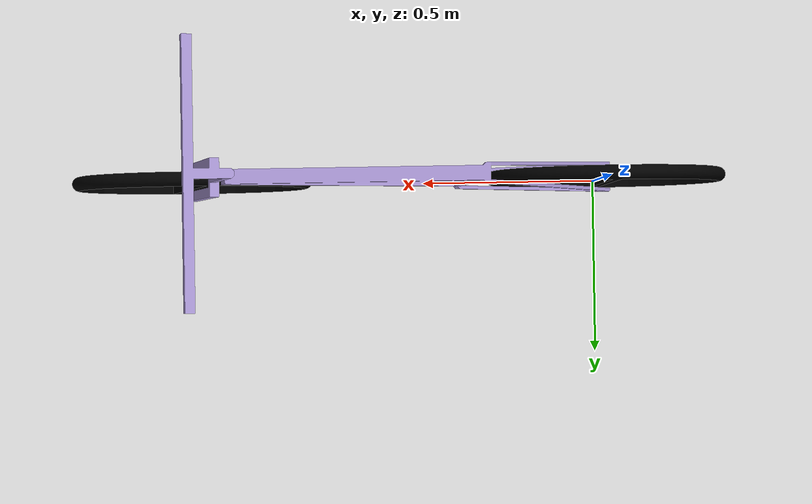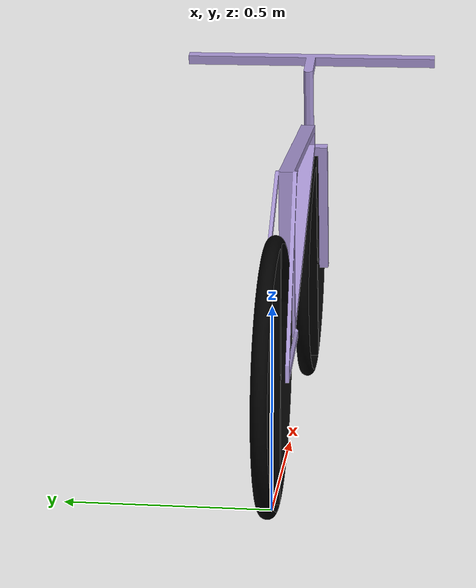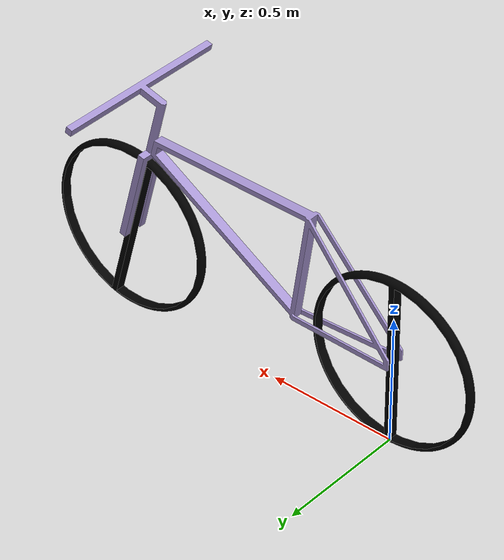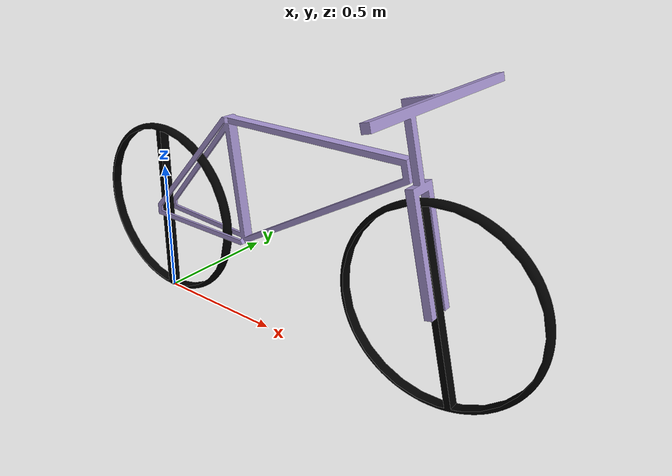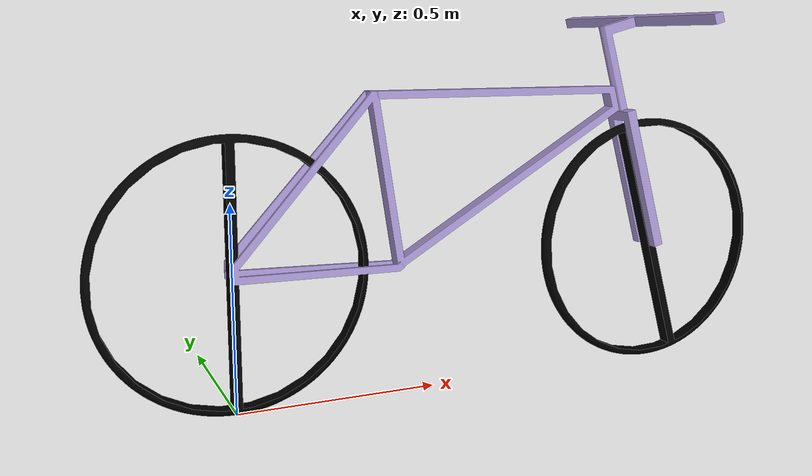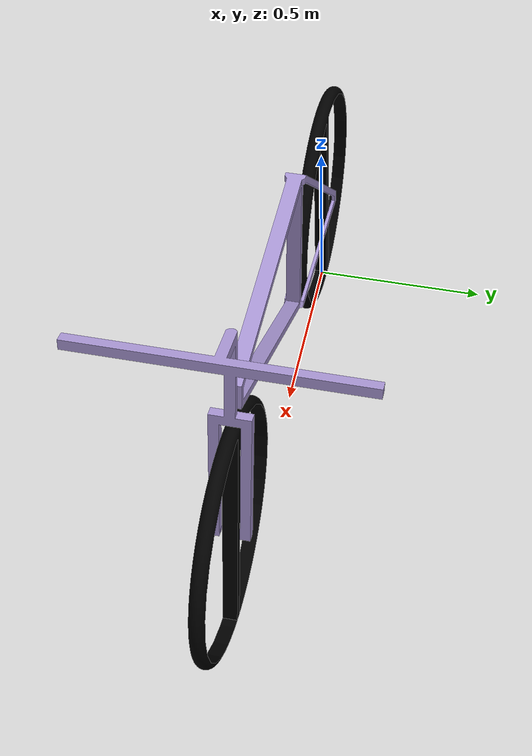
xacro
<?xml version="1.0"?>
<robot name="bicycle" xmlns:xacro="http://www.ros.org/wiki/xacro">
<!-- CAD URL: https://cad.onshape.com/documents/2b1ce4240760f15daae89787/w/7d106373b6d00ec6f115f5ba/e/90937dbd80fb6aa7fd9d0ef9 -->

  <!-- Constants for robot dimensions -->
  <xacro:property name="PI" value="3.1415926535897931"/>
  <xacro:property name="scale" value="1"/>
  <xacro:property name="scale_3" value="${scale*scale*scale}"/>
  <xacro:property name="IN2M" value="0.0254"/>
  <xacro:property name="DEG2RAD" value="0.0174533"/>

  <!-- Wheel Diameter -->
  <xacro:property name="wheel_diameter" value="${26*IN2M*scale}"/>

  <!-- Wheel base distance -->
  <xacro:property name="wheel_base" value="${45*IN2M*scale}"/>

  <!-- ______Inertia Parameters______ -->

  <!-- Front/Back Wheel -->
  <!-- Wheel mesh frame has origin at center of wheel. Frame orientation is such
  that wheel lies in xz plane, with y axis perpindicular (i.e. along rotation axis)-->
  <xacro:property name="m1" value="${1.672*scale}"/>

  <xacro:property name="I_1xx" value="${7.556e-2*scale_3}"/>
  <xacro:property name="I_1yy" value="${1.336e-1*scale_3}"/>
  <xacro:property name="I_1zz" value="${5.836e-2*scale_3}"/>
  <xacro:property name="I_1xy" value="${0.0*scale_3}"/>
  <xacro:property name="I_1xz" value="${0.0*scale_3}"/>
  <xacro:property name="I_1yz" value="${0.0*scale_3}"/>

  <xacro:property name="x1" value="${0*scale}"/>
  <xacro:property name="y1" value="${0*scale}"/>
  <xacro:property name="z1" value="${0*scale}"/>

  <!-- Main Frame -->
  <xacro:property name="m2" value="${4.382*scale}"/>

  <xacro:property name="I_2xx" value="${1.019e-1*scale_3}"/>
  <xacro:property name="I_2yy" value="${4.152e-1*scale_3}"/>
  <xacro:property name="I_2zz" value="${3.156e-1*scale_3}"/>
  <xacro:property name="I_2xy" value="${0.0*scale_3}"/>
  <xacro:property name="I_2xz" value="${-8.981e-2*scale_3}"/>
  <xacro:property name="I_2yz" value="${0.0*scale_3}"/>

  <xacro:property name="x2" value="${0.549*scale}"/>
  <xacro:property name="y2" value="${0.001*scale}"/>
  <xacro:property name="z2" value="${0.245*scale}"/>

  <!-- Steering -->
  <xacro:property name="m3" value="${1.211*scale}"/>
  <xacro:property name="I_3xx" value="${7.002e-2*scale_3}"/>
  <xacro:property name="I_3yy" value="${5.394e-2*scale_3}"/>
  <xacro:property name="I_3zz" value="${2.199e-2*scale_3}"/>
  <xacro:property name="I_3xy" value="${-2.206e-7*scale_3}"/>
  <xacro:property name="I_3xz" value="${-9.601e-3*scale_3}"/>
  <xacro:property name="I_3yz" value="${-2.093e-6*scale_3}"/>

  <xacro:property name="x3" value="${0.041*scale}"/>
  <xacro:property name="y3" value="${-0.001*scale}"/>
  <xacro:property name="z3" value="${0.392*scale}"/>

  <!-- Import Rviz colors -->
  <xacro:include filename="$(find bicycle_description)/urdf/colors.xacro" />

  <!-- Import all Gazebo-customization elements, including Gazebo colors -->
  <xacro:include filename="$(find bicycle_description)/urdf/basic.gazebo" />

  <!--_________MAIN FRAME________________-->

   <link name="base_link">
    <!-- stand front -->
    <visual>
      <origin rpy="0 0 0" xyz="0 0 ${wheel_diameter/2}"/>
      <geometry>
          <mesh filename="package://bicycle_description/meshes/basic_collision_model/Frame.stl" scale="${scale} ${scale} ${scale}"/>
      </geometry>
      <material name="purple"/>
    </visual>

    <collision>
      <origin rpy="0 0 0" xyz="0 0 ${wheel_diameter/2}"/>
      <geometry>
          <mesh filename="package://bicycle_description/meshes/basic_collision_model/Frame.stl" scale="${scale} ${scale} ${scale}"/>
      </geometry>
    </collision>

    <inertial>
      <origin rpy="0 0 0" xyz="${x2} ${y2} ${z2+wheel_diameter/2}"/>
      <mass value="${m2}"/>
      <inertia ixx="${I_2xx}" ixy="${I_2xy}" ixz="${I_2xy}"
               iyy="${I_2yy}" iyz="${I_2yz}"
               izz="${I_2zz}" />
    </inertial>

  </link>

  <!--_________FRONT FORK________________-->

  <link name="steering_fork">
    <!-- frame bottom -->
    <visual>
      <geometry>
          <mesh filename="package://bicycle_description/meshes/basic_collision_model/Steering.stl" scale="${scale} ${scale} ${scale}"/>
      </geometry>
      <origin xyz="0 0 0" rpy="0 0 0"/>
      <material name="purple"/>
    </visual>

    <collision>
      <geometry>
          <mesh filename="package://bicycle_description/meshes/basic_collision_model/Steering.stl" scale="${scale} ${scale} ${scale}"/>
      </geometry>
      <origin xyz="0 0 0" rpy="0 0 0"/>
    </collision>

    <inertial>
      <origin rpy="0 0 0" xyz="${x3} ${y3} ${z3}"/>
      <mass value="${m3}"/>
      <inertia ixx="${I_3xx}" ixy="${I_3xy}" ixz="${I_3xz}"
               iyy="${I_3yy}" iyz="${I_3yz}"
               izz="${I_3zz}" />
    </inertial>
  </link>

  <!--_________FRONT WHEEL_______________-->

  <link name="front_wheel">
    <!-- flywheel -->
    <visual>
      <geometry>
        <mesh filename="package://bicycle_description/meshes/basic_collision_model/Wheel.stl" scale="${scale} ${scale} ${scale}"/>
      </geometry>
      <origin rpy="0 0 0" xyz="0 0 0"/>
      <material name="black"/>
    </visual>

    <collision>
      <geometry>
        <mesh filename="package://bicycle_description/meshes/basic_collision_model/Wheel.stl" scale="${scale} ${scale} ${scale}"/>
      </geometry>
      <origin rpy="0 0 0" xyz="0 0 0"/>
    </collision>

    <inertial>
      <origin rpy="0 0 0" xyz="${x1} ${y1} ${z1}"/>
      <mass value="${m1}"/>
      <inertia ixx="${I_1xx}" ixy="${I_1xy}" ixz="${I_1xz}"
               iyy="${I_1yy}" iyz="${I_1yz}"
               izz="${I_1zz}" />
    </inertial>
  </link>

  <!--_________BACK WHEEL________________-->

  <link name="back_wheel">
    <!-- base box -->
    <visual>
      <geometry>
        <mesh filename="package://bicycle_description/meshes/basic_collision_model/Wheel.stl" scale="${scale} ${scale} ${scale}"/>
      </geometry>
      <origin rpy="0 0 0" xyz="0 0 0"/>
      <material name="black"/>
    </visual>

    <collision>
      <geometry>
        <mesh filename="package://bicycle_description/meshes/basic_collision_model/Wheel.stl" scale="${scale} ${scale} ${scale}"/>
      </geometry>
      <origin rpy="0 0 0" xyz="0 0 0"/>
    </collision>

    <inertial>
      <origin rpy="0 0 0" xyz="${x1} ${y1} ${z1}"/>
      <mass value="${m1}"/>
      <inertia ixx="${I_1xx}" ixy="${I_1xy}" ixz="${I_1xz}"
               iyy="${I_1yy}" iyz="${I_1yz}"
               izz="${I_1zz}" />
    </inertial>
  </link>

  <!--_________JOINTS WHEEL______________-->

  <joint name="steering_joint" type="continuous">
    <parent link="base_link"/>
    <child link="steering_fork"/>
    <origin xyz="${wheel_base} 0 ${wheel_diameter/2} " rpy="0 ${-15*DEG2RAD} 0"/>
    <axis xyz="0 0 1"/>
  </joint>

  <joint name="front_wheel_joint" type="continuous">
    <parent link="steering_fork"/>
    <child link="front_wheel"/>
    <origin xyz="0 0 0" rpy="0 0 0"/>
    <axis xyz="0 1 0"/>
  </joint>

  <joint name="back_wheel_joint" type="continuous">
    <parent link="base_link"/>
    <child link="back_wheel"/>
    <origin xyz="0 0 ${wheel_diameter/2}" rpy="0 0 0"/>
    <axis xyz="0 1 0"/>
  </joint>

</robot>

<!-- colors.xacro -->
<robot>

    <material name="wood">
        <color rgba="0.8 0.7 0 1"/>
    </material>

    <material name="plastic">
        <color rgba="0.5 0.5 0.5 0.7"/>
    </material>

    <material name="metal">
        <color rgba="0.8 0.8 0.8 1"/>
    </material>

    <material name="blue">
        <color rgba="0 0 0.8 1"/>
    </material>

    <material name="black">
        <color rgba="0 0 0 1"/>
    </material>

    <material name="white">
        <color rgba="1 1 1 1"/>
    </material>

    <material name="green">
        <color rgba="0.0 0.8 0.0 1.0"/>
    </material>

    <material name="gray">
        <color rgba="0.2 0.2 0.2 1.0"/>
    </material>

    <material name="orange">
        <color rgba="${255/255} ${108/255} ${10/255} 1.0"/>
    </material>

    <material name="brown">
        <color rgba="${222/255} ${207/255} ${195/255} 1.0"/>
    </material>

    <material name="red">
        <color rgba="0.8 0.0 0.0 1.0"/>
    </material>

    <material name="purple">
        <color rgba="${167/255} ${149/255} ${210/255} 1.0"/>
    </material>

</robot>
